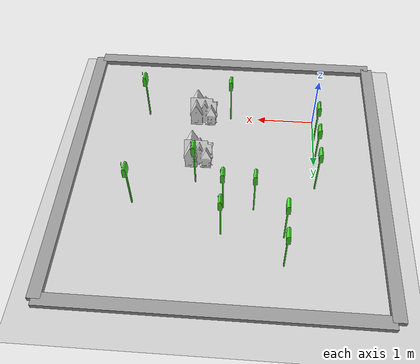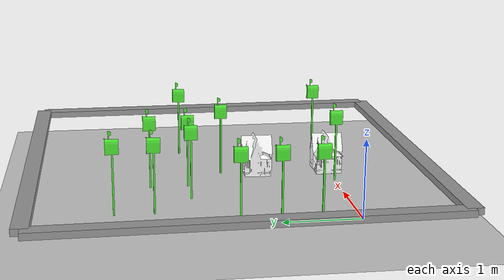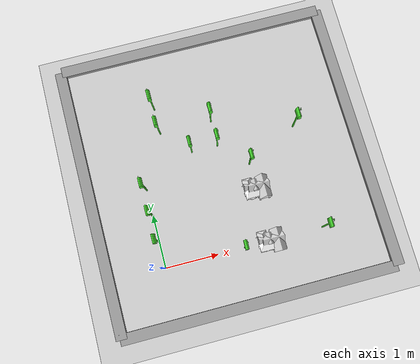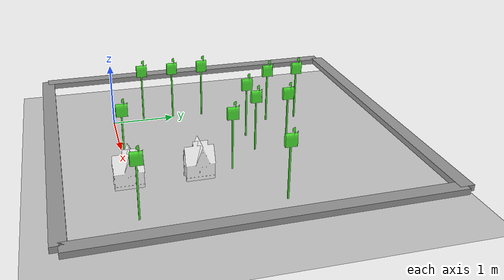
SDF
<sdf version="1.6">
 <world name="default">
  <light name="sun" type="directional">
   <pose>0 0 10 0 -0 0</pose>
   <diffuse>0.8 0.8 0.8 1</diffuse>
   <specular>0.1 0.1 0.1 1</specular>
   <attenuation>
    <range>1000</range>
    <constant>0.9</constant>
    <linear>0.01</linear>
    <quadratic>0.001</quadratic>
   </attenuation>
   <direction>-0.5 0.5 -1</direction>
  </light>
  <model name="ground_plane">
   <static>1</static>
   <link name="link">
    <collision name="collision">
     <geometry><plane><normal>0 0 1</normal><size>100 100</size></plane></geometry>
     <surface><friction><ode><mu>100</mu><mu2>50</mu2></ode></friction></surface>
    </collision>
    <visual name="visual">
     <cast_shadows>0</cast_shadows>
     <geometry><plane><normal>0 0 1</normal><size>100 100</size></plane></geometry>
     <material>
      <script><uri>file://media/materials/scripts/gazebo.material</uri><name>Gazebo/Grey</name></script>
     </material>
    </visual>
   </link>
  </model>
  <gravity>0 0 -9.8</gravity>
  <magnetic_field>6e-06 2.3e-05 -4.2e-05</magnetic_field>
  <atmosphere type="adiabatic"/>
  <physics name="default_physics" default="0" type="ode">
   <max_step_size>0.001</max_step_size>
   <real_time_factor>1</real_time_factor>
   <real_time_update_rate>1000</real_time_update_rate>
  </physics>
  <scene><ambient>0.4 0.4 0.4 1</ambient><background>0.7 0.7 0.7 1</background><shadows>1</shadows></scene>
  <spherical_coordinates>
   <surface_model>EARTH_WGS84</surface_model>
   <latitude_deg>0</latitude_deg>
   <longitude_deg>0</longitude_deg>
   <elevation>0</elevation>
   <heading_deg>0</heading_deg>
  </spherical_coordinates>
  <model name="wall1">
   <static>1</static>
   <link name="link">
    <pose>0 0 0.42 0 -0 0</pose>
    <collision name="collision"><geometry><box><size>5 0.2 0.084</size></box></geometry></collision>
    <visual name="visual">
     <cast_shadows>0</cast_shadows>
     <geometry><box><size>5 0.2 0.084</size></box></geometry>
     <material>
      <script>
       <uri>model://grey_wall/materials/scripts</uri>
       <uri>model://grey_wall/materials/textures</uri>
       <name>vrc/grey_wall</name>
      </script>
     </material>
    </visual>
   </link>
   <pose>-1 1.5 0 0 -0 -1.55905</pose>
  </model>
  <model name="wall2">
   <static>1</static>
   <link name="link">
    <pose>0 0 0.42 0 -0 0</pose>
    <collision name="collision"><geometry><box><size>5 0.2 0.084</size></box></geometry></collision>
    <visual name="visual">
     <cast_shadows>0</cast_shadows>
     <geometry><box><size>5 0.2 0.084</size></box></geometry>
     <material>
      <script>
       <uri>model://grey_wall/materials/scripts</uri>
       <uri>model://grey_wall/materials/textures</uri>
       <name>vrc/grey_wall</name>
      </script>
     </material>
    </visual>
   </link>
   <pose>1.5 4.0 0 0 -0 0</pose>
  </model>
  <model name="wall3">
   <static>1</static>
   <link name="link">
    <pose>0 0 0.42 0 -0 0</pose>
    <collision name="collision"><geometry><box><size>5 0.2 0.084</size></box></geometry></collision>
    <visual name="visual">
     <cast_shadows>0</cast_shadows>
     <geometry><box><size>5 0.2 0.084</size></box></geometry>
     <material>
      <script>
       <uri>model://grey_wall/materials/scripts</uri>
       <uri>model://grey_wall/materials/textures</uri>
       <name>vrc/grey_wall</name>
      </script>
     </material>
    </visual>
   </link>
   <pose>4.0 1.5 0 0 -0 -1.55905</pose>
  </model>
  <model name="wall4">
   <static>1</static>
   <link name="link">
    <pose>0 0 0.42 0 -0 0</pose>
    <collision name="collision"><geometry><box><size>5 0.2 0.084</size></box></geometry></collision>
    <visual name="visual">
     <cast_shadows>0</cast_shadows>
     <geometry><box><size>5 0.2 0.084</size></box></geometry>
     <material>
      <script>
       <uri>model://grey_wall/materials/scripts</uri>
       <uri>model://grey_wall/materials/textures</uri>
       <name>vrc/grey_wall</name>
      </script>
     </material>
    </visual>
   </link>
   <pose>1.5 -1 0 0 -0 0</pose>
  </model>
  <model name="Mailbox_1">
   <link name="link">
    <inertial>
     <mass>1</mass>
     <inertia><ixx>1</ixx><ixy>0</ixy><ixz>0</ixz><iyy>1</iyy><iyz>0</iyz><izz>1</izz></inertia>
    </inertial>
    <visual name="visual">
     <geometry><mesh><uri>model://mailbox/meshes/mailbox.dae</uri><scale>0.5 0.5 1</scale></mesh></geometry>
     <material>
      <ambient>0.3 0.9 0.2 0</ambient>
      <diffuse>0.3 0.9 0.2 0</diffuse>
      <specular>0 0 0 1</specular>
      <emissive>0 0 0 1</emissive>
      <script><name>ModelPreview_1::link::visual_MATERIAL_</name><uri>__default__</uri></script>
      <shader type="vertex"><normal_map>__default__</normal_map></shader>
     </material>
    </visual>
    <collision name="collision_0">
     <geometry><mesh><uri>model://mailbox/meshes/mailbox.dae</uri><scale>0.5 0.5 1</scale></mesh></geometry>
     <surface>
      <friction>
       <ode><mu>1</mu><mu2>1</mu2><fdir1>0 0 0</fdir1><slip1>0</slip1><slip2>0</slip2></ode>
       <torsional>
        <coefficient>1</coefficient>
        <patch_radius>0</patch_radius>
        <surface_radius>0</surface_radius>
        <use_patch_radius>1</use_patch_radius>
        <ode><slip>0</slip></ode>
       </torsional>
      </friction>
      <bounce><restitution_coefficient>0</restitution_coefficient><threshold>1e+06</threshold></bounce>
      <contact>
       <collide_without_contact>0</collide_without_contact>
       <collide_without_contact_bitmask>1</collide_without_contact_bitmask>
       <collide_bitmask>0</collide_bitmask>
       <ode>
        <soft_cfm>0</soft_cfm>
        <soft_erp>0.2</soft_erp>
        <kp>1e+13</kp>
        <kd>1</kd>
        <max_vel>0.01</max_vel>
        <min_depth>0</min_depth>
       </ode>
       <bullet>
        <split_impulse>1</split_impulse>
        <split_impulse_penetration_threshold>-0.01</split_impulse_penetration_threshold>
        <soft_cfm>0</soft_cfm>
        <soft_erp>0.2</soft_erp>
        <kp>1e+13</kp>
        <kd>1</kd>
       </bullet>
      </contact>
     </surface>
    </collision>
   </link>
   <static>1</static>
   <pose>2.0 1.5 0 0 -0 0</pose>
  </model>
  <model name="Mailbox_2">
   <link name="link">
    <inertial>
     <mass>1</mass>
     <inertia><ixx>1</ixx><ixy>0</ixy><ixz>0</ixz><iyy>1</iyy><iyz>0</iyz><izz>1</izz></inertia>
    </inertial>
    <visual name="visual">
     <geometry><mesh><uri>model://mailbox/meshes/mailbox.dae</uri><scale>0.5 0.5 1</scale></mesh></geometry>
     <material>
      <ambient>0.3 0.9 0.2 0</ambient>
      <diffuse>0.3 0.9 0.2 0</diffuse>
      <specular>0 0 0 1</specular>
      <emissive>0 0 0 1</emissive>
      <script><name>ModelPreview_1::link::visual_MATERIAL_</name><uri>__default__</uri></script>
      <shader type="vertex"><normal_map>__default__</normal_map></shader>
     </material>
    </visual>
    <collision name="collision_0">
     <geometry><mesh><uri>model://mailbox/meshes/mailbox.dae</uri><scale>0.5 0.5 1</scale></mesh></geometry>
     <surface>
      <friction>
       <ode><mu>1</mu><mu2>1</mu2><fdir1>0 0 0</fdir1><slip1>0</slip1><slip2>0</slip2></ode>
       <torsional>
        <coefficient>1</coefficient>
        <patch_radius>0</patch_radius>
        <surface_radius>0</surface_radius>
        <use_patch_radius>1</use_patch_radius>
        <ode><slip>0</slip></ode>
       </torsional>
      </friction>
      <bounce><restitution_coefficient>0</restitution_coefficient><threshold>1e+06</threshold></bounce>
      <contact>
       <collide_without_contact>0</collide_without_contact>
       <collide_without_contact_bitmask>1</collide_without_contact_bitmask>
       <collide_bitmask>0</collide_bitmask>
       <ode>
        <soft_cfm>0</soft_cfm>
        <soft_erp>0.2</soft_erp>
        <kp>1e+13</kp>
        <kd>1</kd>
        <max_vel>0.01</max_vel>
        <min_depth>0</min_depth>
       </ode>
       <bullet>
        <split_impulse>1</split_impulse>
        <split_impulse_penetration_threshold>-0.01</split_impulse_penetration_threshold>
        <soft_cfm>0</soft_cfm>
        <soft_erp>0.2</soft_erp>
        <kp>1e+13</kp>
        <kd>1</kd>
       </bullet>
      </contact>
     </surface>
    </collision>
   </link>
   <static>1</static>
   <pose>0.0 1.0 0 0 -0 0</pose>
  </model>
  <model name="Mailbox_3">
   <link name="link">
    <inertial>
     <mass>1</mass>
     <inertia><ixx>1</ixx><ixy>0</ixy><ixz>0</ixz><iyy>1</iyy><iyz>0</iyz><izz>1</izz></inertia>
    </inertial>
    <visual name="visual">
     <geometry><mesh><uri>model://mailbox/meshes/mailbox.dae</uri><scale>0.5 0.5 1</scale></mesh></geometry>
     <material>
      <ambient>0.3 0.9 0.2 0</ambient>
      <diffuse>0.3 0.9 0.2 0</diffuse>
      <specular>0 0 0 1</specular>
      <emissive>0 0 0 1</emissive>
      <script><name>ModelPreview_1::link::visual_MATERIAL_</name><uri>__default__</uri></script>
      <shader type="vertex"><normal_map>__default__</normal_map></shader>
     </material>
    </visual>
    <collision name="collision_0">
     <geometry><mesh><uri>model://mailbox/meshes/mailbox.dae</uri><scale>0.5 0.5 1</scale></mesh></geometry>
     <surface>
      <friction>
       <ode><mu>1</mu><mu2>1</mu2><fdir1>0 0 0</fdir1><slip1>0</slip1><slip2>0</slip2></ode>
       <torsional>
        <coefficient>1</coefficient>
        <patch_radius>0</patch_radius>
        <surface_radius>0</surface_radius>
        <use_patch_radius>1</use_patch_radius>
        <ode><slip>0</slip></ode>
       </torsional>
      </friction>
      <bounce><restitution_coefficient>0</restitution_coefficient><threshold>1e+06</threshold></bounce>
      <contact>
       <collide_without_contact>0</collide_without_contact>
       <collide_without_contact_bitmask>1</collide_without_contact_bitmask>
       <collide_bitmask>0</collide_bitmask>
       <ode>
        <soft_cfm>0</soft_cfm>
        <soft_erp>0.2</soft_erp>
        <kp>1e+13</kp>
        <kd>1</kd>
        <max_vel>0.01</max_vel>
        <min_depth>0</min_depth>
       </ode>
       <bullet>
        <split_impulse>1</split_impulse>
        <split_impulse_penetration_threshold>-0.01</split_impulse_penetration_threshold>
        <soft_cfm>0</soft_cfm>
        <soft_erp>0.2</soft_erp>
        <kp>1e+13</kp>
        <kd>1</kd>
       </bullet>
      </contact>
     </surface>
    </collision>
   </link>
   <static>1</static>
   <pose>3.0 2.0 0 0 -0 0</pose>
  </model>
  <model name="Mailbox_4">
   <link name="link">
    <inertial>
     <mass>1</mass>
     <inertia><ixx>1</ixx><ixy>0</ixy><ixz>0</ixz><iyy>1</iyy><iyz>0</iyz><izz>1</izz></inertia>
    </inertial>
    <visual name="visual">
     <geometry><mesh><uri>model://mailbox/meshes/mailbox.dae</uri><scale>0.5 0.5 1</scale></mesh></geometry>
     <material>
      <ambient>0.3 0.9 0.2 0</ambient>
      <diffuse>0.3 0.9 0.2 0</diffuse>
      <specular>0 0 0 1</specular>
      <emissive>0 0 0 1</emissive>
      <script><name>ModelPreview_1::link::visual_MATERIAL_</name><uri>__default__</uri></script>
      <shader type="vertex"><normal_map>__default__</normal_map></shader>
     </material>
    </visual>
    <collision name="collision_0">
     <geometry><mesh><uri>model://mailbox/meshes/mailbox.dae</uri><scale>0.5 0.5 1</scale></mesh></geometry>
     <surface>
      <friction>
       <ode><mu>1</mu><mu2>1</mu2><fdir1>0 0 0</fdir1><slip1>0</slip1><slip2>0</slip2></ode>
       <torsional>
        <coefficient>1</coefficient>
        <patch_radius>0</patch_radius>
        <surface_radius>0</surface_radius>
        <use_patch_radius>1</use_patch_radius>
        <ode><slip>0</slip></ode>
       </torsional>
      </friction>
      <bounce><restitution_coefficient>0</restitution_coefficient><threshold>1e+06</threshold></bounce>
      <contact>
       <collide_without_contact>0</collide_without_contact>
       <collide_without_contact_bitmask>1</collide_without_contact_bitmask>
       <collide_bitmask>0</collide_bitmask>
       <ode>
        <soft_cfm>0</soft_cfm>
        <soft_erp>0.2</soft_erp>
        <kp>1e+13</kp>
        <kd>1</kd>
        <max_vel>0.01</max_vel>
        <min_depth>0</min_depth>
       </ode>
       <bullet>
        <split_impulse>1</split_impulse>
        <split_impulse_penetration_threshold>-0.01</split_impulse_penetration_threshold>
        <soft_cfm>0</soft_cfm>
        <soft_erp>0.2</soft_erp>
        <kp>1e+13</kp>
        <kd>1</kd>
       </bullet>
      </contact>
     </surface>
    </collision>
   </link>
   <static>1</static>
   <pose>3.0 0.0 0 0 -0 0</pose>
  </model>
  <model name="Mailbox_5">
   <link name="link">
    <inertial>
     <mass>1</mass>
     <inertia><ixx>1</ixx><ixy>0</ixy><ixz>0</ixz><iyy>1</iyy><iyz>0</iyz><izz>1</izz></inertia>
    </inertial>
    <visual name="visual">
     <geometry><mesh><uri>model://mailbox/meshes/mailbox.dae</uri><scale>0.5 0.5 1</scale></mesh></geometry>
     <material>
      <ambient>0.3 0.9 0.2 0</ambient>
      <diffuse>0.3 0.9 0.2 0</diffuse>
      <specular>0 0 0 1</specular>
      <emissive>0 0 0 1</emissive>
      <script><name>ModelPreview_1::link::visual_MATERIAL_</name><uri>__default__</uri></script>
      <shader type="vertex"><normal_map>__default__</normal_map></shader>
     </material>
    </visual>
    <collision name="collision_0">
     <geometry><mesh><uri>model://mailbox/meshes/mailbox.dae</uri><scale>0.5 0.5 1</scale></mesh></geometry>
     <surface>
      <friction>
       <ode><mu>1</mu><mu2>1</mu2><fdir1>0 0 0</fdir1><slip1>0</slip1><slip2>0</slip2></ode>
       <torsional>
        <coefficient>1</coefficient>
        <patch_radius>0</patch_radius>
        <surface_radius>0</surface_radius>
        <use_patch_radius>1</use_patch_radius>
        <ode><slip>0</slip></ode>
       </torsional>
      </friction>
      <bounce><restitution_coefficient>0</restitution_coefficient><threshold>1e+06</threshold></bounce>
      <contact>
       <collide_without_contact>0</collide_without_contact>
       <collide_without_contact_bitmask>1</collide_without_contact_bitmask>
       <collide_bitmask>0</collide_bitmask>
       <ode>
        <soft_cfm>0</soft_cfm>
        <soft_erp>0.2</soft_erp>
        <kp>1e+13</kp>
        <kd>1</kd>
        <max_vel>0.01</max_vel>
        <min_depth>0</min_depth>
       </ode>
       <bullet>
        <split_impulse>1</split_impulse>
        <split_impulse_penetration_threshold>-0.01</split_impulse_penetration_threshold>
        <soft_cfm>0</soft_cfm>
        <soft_erp>0.2</soft_erp>
        <kp>1e+13</kp>
        <kd>1</kd>
       </bullet>
      </contact>
     </surface>
    </collision>
   </link>
   <static>1</static>
   <pose>0.0 0.5 0 0 -0 0</pose>
  </model>
  <model name="Mailbox_6">
   <link name="link">
    <inertial>
     <mass>1</mass>
     <inertia><ixx>1</ixx><ixy>0</ixy><ixz>0</ixz><iyy>1</iyy><iyz>0</iyz><izz>1</izz></inertia>
    </inertial>
    <visual name="visual">
     <geometry><mesh><uri>model://mailbox/meshes/mailbox.dae</uri><scale>0.5 0.5 1</scale></mesh></geometry>
     <material>
      <ambient>0.3 0.9 0.2 0</ambient>
      <diffuse>0.3 0.9 0.2 0</diffuse>
      <specular>0 0 0 1</specular>
      <emissive>0 0 0 1</emissive>
      <script><name>ModelPreview_1::link::visual_MATERIAL_</name><uri>__default__</uri></script>
      <shader type="vertex"><normal_map>__default__</normal_map></shader>
     </material>
    </visual>
    <collision name="collision_0">
     <geometry><mesh><uri>model://mailbox/meshes/mailbox.dae</uri><scale>0.5 0.5 1</scale></mesh></geometry>
     <surface>
      <friction>
       <ode><mu>1</mu><mu2>1</mu2><fdir1>0 0 0</fdir1><slip1>0</slip1><slip2>0</slip2></ode>
       <torsional>
        <coefficient>1</coefficient>
        <patch_radius>0</patch_radius>
        <surface_radius>0</surface_radius>
        <use_patch_radius>1</use_patch_radius>
        <ode><slip>0</slip></ode>
       </torsional>
      </friction>
      <bounce><restitution_coefficient>0</restitution_coefficient><threshold>1e+06</threshold></bounce>
      <contact>
       <collide_without_contact>0</collide_without_contact>
       <collide_without_contact_bitmask>1</collide_without_contact_bitmask>
       <collide_bitmask>0</collide_bitmask>
       <ode>
        <soft_cfm>0</soft_cfm>
        <soft_erp>0.2</soft_erp>
        <kp>1e+13</kp>
        <kd>1</kd>
        <max_vel>0.01</max_vel>
        <min_depth>0</min_depth>
       </ode>
       <bullet>
        <split_impulse>1</split_impulse>
        <split_impulse_penetration_threshold>-0.01</split_impulse_penetration_threshold>
        <soft_cfm>0</soft_cfm>
        <soft_erp>0.2</soft_erp>
        <kp>1e+13</kp>
        <kd>1</kd>
       </bullet>
      </contact>
     </surface>
    </collision>
   </link>
   <static>1</static>
   <pose>1.0 2.0 0 0 -0 0</pose>
  </model>
  <model name="Mailbox_7">
   <link name="link">
    <inertial>
     <mass>1</mass>
     <inertia><ixx>1</ixx><ixy>0</ixy><ixz>0</ixz><iyy>1</iyy><iyz>0</iyz><izz>1</izz></inertia>
    </inertial>
    <visual name="visual">
     <geometry><mesh><uri>model://mailbox/meshes/mailbox.dae</uri><scale>0.5 0.5 1</scale></mesh></geometry>
     <material>
      <ambient>0.3 0.9 0.2 0</ambient>
      <diffuse>0.3 0.9 0.2 0</diffuse>
      <specular>0 0 0 1</specular>
      <emissive>0 0 0 1</emissive>
      <script><name>ModelPreview_1::link::visual_MATERIAL_</name><uri>__default__</uri></script>
      <shader type="vertex"><normal_map>__default__</normal_map></shader>
     </material>
    </visual>
    <collision name="collision_0">
     <geometry><mesh><uri>model://mailbox/meshes/mailbox.dae</uri><scale>0.5 0.5 1</scale></mesh></geometry>
     <surface>
      <friction>
       <ode><mu>1</mu><mu2>1</mu2><fdir1>0 0 0</fdir1><slip1>0</slip1><slip2>0</slip2></ode>
       <torsional>
        <coefficient>1</coefficient>
        <patch_radius>0</patch_radius>
        <surface_radius>0</surface_radius>
        <use_patch_radius>1</use_patch_radius>
        <ode><slip>0</slip></ode>
       </torsional>
      </friction>
      <bounce><restitution_coefficient>0</restitution_coefficient><threshold>1e+06</threshold></bounce>
      <contact>
       <collide_without_contact>0</collide_without_contact>
       <collide_without_contact_bitmask>1</collide_without_contact_bitmask>
       <collide_bitmask>0</collide_bitmask>
       <ode>
        <soft_cfm>0</soft_cfm>
        <soft_erp>0.2</soft_erp>
        <kp>1e+13</kp>
        <kd>1</kd>
        <max_vel>0.01</max_vel>
        <min_depth>0</min_depth>
       </ode>
       <bullet>
        <split_impulse>1</split_impulse>
        <split_impulse_penetration_threshold>-0.01</split_impulse_penetration_threshold>
        <soft_cfm>0</soft_cfm>
        <soft_erp>0.2</soft_erp>
        <kp>1e+13</kp>
        <kd>1</kd>
       </bullet>
      </contact>
     </surface>
    </collision>
   </link>
   <static>1</static>
   <pose>0.5 3.0 0 0 -0 0</pose>
  </model>
  <model name="Mailbox_8">
   <link name="link">
    <inertial>
     <mass>1</mass>
     <inertia><ixx>1</ixx><ixy>0</ixy><ixz>0</ixz><iyy>1</iyy><iyz>0</iyz><izz>1</izz></inertia>
    </inertial>
    <visual name="visual">
     <geometry><mesh><uri>model://mailbox/meshes/mailbox.dae</uri><scale>0.5 0.5 1</scale></mesh></geometry>
     <material>
      <ambient>0.3 0.9 0.2 0</ambient>
      <diffuse>0.3 0.9 0.2 0</diffuse>
      <specular>0 0 0 1</specular>
      <emissive>0 0 0 1</emissive>
      <script><name>ModelPreview_1::link::visual_MATERIAL_</name><uri>__default__</uri></script>
      <shader type="vertex"><normal_map>__default__</normal_map></shader>
     </material>
    </visual>
    <collision name="collision_0">
     <geometry><mesh><uri>model://mailbox/meshes/mailbox.dae</uri><scale>0.5 0.5 1</scale></mesh></geometry>
     <surface>
      <friction>
       <ode><mu>1</mu><mu2>1</mu2><fdir1>0 0 0</fdir1><slip1>0</slip1><slip2>0</slip2></ode>
       <torsional>
        <coefficient>1</coefficient>
        <patch_radius>0</patch_radius>
        <surface_radius>0</surface_radius>
        <use_patch_radius>1</use_patch_radius>
        <ode><slip>0</slip></ode>
       </torsional>
      </friction>
      <bounce><restitution_coefficient>0</restitution_coefficient><threshold>1e+06</threshold></bounce>
      <contact>
       <collide_without_contact>0</collide_without_contact>
       <collide_without_contact_bitmask>1</collide_without_contact_bitmask>
       <collide_bitmask>0</collide_bitmask>
       <ode>
        <soft_cfm>0</soft_cfm>
        <soft_erp>0.2</soft_erp>
        <kp>1e+13</kp>
        <kd>1</kd>
        <max_vel>0.01</max_vel>
        <min_depth>0</min_depth>
       </ode>
       <bullet>
        <split_impulse>1</split_impulse>
        <split_impulse_penetration_threshold>-0.01</split_impulse_penetration_threshold>
        <soft_cfm>0</soft_cfm>
        <soft_erp>0.2</soft_erp>
        <kp>1e+13</kp>
        <kd>1</kd>
       </bullet>
      </contact>
     </surface>
    </collision>
   </link>
   <static>1</static>
   <pose>0.5 2.5 0 0 -0 0</pose>
  </model>
  <model name="Mailbox_9">
   <link name="link">
    <inertial>
     <mass>1</mass>
     <inertia><ixx>1</ixx><ixy>0</ixy><ixz>0</ixz><iyy>1</iyy><iyz>0</iyz><izz>1</izz></inertia>
    </inertial>
    <visual name="visual">
     <geometry><mesh><uri>model://mailbox/meshes/mailbox.dae</uri><scale>0.5 0.5 1</scale></mesh></geometry>
     <material>
      <ambient>0.3 0.9 0.2 0</ambient>
      <diffuse>0.3 0.9 0.2 0</diffuse>
      <specular>0 0 0 1</specular>
      <emissive>0 0 0 1</emissive>
      <script><name>ModelPreview_1::link::visual_MATERIAL_</name><uri>__default__</uri></script>
      <shader type="vertex"><normal_map>__default__</normal_map></shader>
     </material>
    </visual>
    <collision name="collision_0">
     <geometry><mesh><uri>model://mailbox/meshes/mailbox.dae</uri><scale>0.5 0.5 1</scale></mesh></geometry>
     <surface>
      <friction>
       <ode><mu>1</mu><mu2>1</mu2><fdir1>0 0 0</fdir1><slip1>0</slip1><slip2>0</slip2></ode>
       <torsional>
        <coefficient>1</coefficient>
        <patch_radius>0</patch_radius>
        <surface_radius>0</surface_radius>
        <use_patch_radius>1</use_patch_radius>
        <ode><slip>0</slip></ode>
       </torsional>
      </friction>
      <bounce><restitution_coefficient>0</restitution_coefficient><threshold>1e+06</threshold></bounce>
      <contact>
       <collide_without_contact>0</collide_without_contact>
       <collide_without_contact_bitmask>1</collide_without_contact_bitmask>
       <collide_bitmask>0</collide_bitmask>
       <ode>
        <soft_cfm>0</soft_cfm>
        <soft_erp>0.2</soft_erp>
        <kp>1e+13</kp>
        <kd>1</kd>
        <max_vel>0.01</max_vel>
        <min_depth>0</min_depth>
       </ode>
       <bullet>
        <split_impulse>1</split_impulse>
        <split_impulse_penetration_threshold>-0.01</split_impulse_penetration_threshold>
        <soft_cfm>0</soft_cfm>
        <soft_erp>0.2</soft_erp>
        <kp>1e+13</kp>
        <kd>1</kd>
       </bullet>
      </contact>
     </surface>
    </collision>
   </link>
   <static>1</static>
   <pose>1.0 2.0 0 0 -0 0</pose>
  </model>
  <model name="Mailbox_10">
   <link name="link">
    <inertial>
     <mass>1</mass>
     <inertia><ixx>1</ixx><ixy>0</ixy><ixz>0</ixz><iyy>1</iyy><iyz>0</iyz><izz>1</izz></inertia>
    </inertial>
    <visual name="visual">
     <geometry><mesh><uri>model://mailbox/meshes/mailbox.dae</uri><scale>0.5 0.5 1</scale></mesh></geometry>
     <material>
      <ambient>0.3 0.9 0.2 0</ambient>
      <diffuse>0.3 0.9 0.2 0</diffuse>
      <specular>0 0 0 1</specular>
      <emissive>0 0 0 1</emissive>
      <script><name>ModelPreview_1::link::visual_MATERIAL_</name><uri>__default__</uri></script>
      <shader type="vertex"><normal_map>__default__</normal_map></shader>
     </material>
    </visual>
    <collision name="collision_0">
     <geometry><mesh><uri>model://mailbox/meshes/mailbox.dae</uri><scale>0.5 0.5 1</scale></mesh></geometry>
     <surface>
      <friction>
       <ode><mu>1</mu><mu2>1</mu2><fdir1>0 0 0</fdir1><slip1>0</slip1><slip2>0</slip2></ode>
       <torsional>
        <coefficient>1</coefficient>
        <patch_radius>0</patch_radius>
        <surface_radius>0</surface_radius>
        <use_patch_radius>1</use_patch_radius>
        <ode><slip>0</slip></ode>
       </torsional>
      </friction>
      <bounce><restitution_coefficient>0</restitution_coefficient><threshold>1e+06</threshold></bounce>
      <contact>
       <collide_without_contact>0</collide_without_contact>
       <collide_without_contact_bitmask>1</collide_without_contact_bitmask>
       <collide_bitmask>0</collide_bitmask>
       <ode>
        <soft_cfm>0</soft_cfm>
        <soft_erp>0.2</soft_erp>
        <kp>1e+13</kp>
        <kd>1</kd>
        <max_vel>0.01</max_vel>
        <min_depth>0</min_depth>
       </ode>
       <bullet>
        <split_impulse>1</split_impulse>
        <split_impulse_penetration_threshold>-0.01</split_impulse_penetration_threshold>
        <soft_cfm>0</soft_cfm>
        <soft_erp>0.2</soft_erp>
        <kp>1e+13</kp>
        <kd>1</kd>
       </bullet>
      </contact>
     </surface>
    </collision>
   </link>
   <static>1</static>
   <pose>1.5 0.0 0 0 -0 0</pose>
  </model>
  <model name="Mailbox_11">
   <link name="link">
    <inertial>
     <mass>1</mass>
     <inertia><ixx>1</ixx><ixy>0</ixy><ixz>0</ixz><iyy>1</iyy><iyz>0</iyz><izz>1</izz></inertia>
    </inertial>
    <visual name="visual">
     <geometry><mesh><uri>model://mailbox/meshes/mailbox.dae</uri><scale>0.5 0.5 1</scale></mesh></geometry>
     <material>
      <ambient>0.3 0.9 0.2 0</ambient>
      <diffuse>0.3 0.9 0.2 0</diffuse>
      <specular>0 0 0 1</specular>
      <emissive>0 0 0 1</emissive>
      <script><name>ModelPreview_1::link::visual_MATERIAL_</name><uri>__default__</uri></script>
      <shader type="vertex"><normal_map>__default__</normal_map></shader>
     </material>
    </visual>
    <collision name="collision_0">
     <geometry><mesh><uri>model://mailbox/meshes/mailbox.dae</uri><scale>0.5 0.5 1</scale></mesh></geometry>
     <surface>
      <friction>
       <ode><mu>1</mu><mu2>1</mu2><fdir1>0 0 0</fdir1><slip1>0</slip1><slip2>0</slip2></ode>
       <torsional>
        <coefficient>1</coefficient>
        <patch_radius>0</patch_radius>
        <surface_radius>0</surface_radius>
        <use_patch_radius>1</use_patch_radius>
        <ode><slip>0</slip></ode>
       </torsional>
      </friction>
      <bounce><restitution_coefficient>0</restitution_coefficient><threshold>1e+06</threshold></bounce>
      <contact>
       <collide_without_contact>0</collide_without_contact>
       <collide_without_contact_bitmask>1</collide_without_contact_bitmask>
       <collide_bitmask>0</collide_bitmask>
       <ode>
        <soft_cfm>0</soft_cfm>
        <soft_erp>0.2</soft_erp>
        <kp>1e+13</kp>
        <kd>1</kd>
        <max_vel>0.01</max_vel>
        <min_depth>0</min_depth>
       </ode>
       <bullet>
        <split_impulse>1</split_impulse>
        <split_impulse_penetration_threshold>-0.01</split_impulse_penetration_threshold>
        <soft_cfm>0</soft_cfm>
        <soft_erp>0.2</soft_erp>
        <kp>1e+13</kp>
        <kd>1</kd>
       </bullet>
      </contact>
     </surface>
    </collision>
   </link>
   <static>1</static>
   <pose>0.0 1.5 0 0 -0 0</pose>
  </model>
  <model name="Mailbox_12">
   <link name="link">
    <inertial>
     <mass>1</mass>
     <inertia><ixx>1</ixx><ixy>0</ixy><ixz>0</ixz><iyy>1</iyy><iyz>0</iyz><izz>1</izz></inertia>
    </inertial>
    <visual name="visual">
     <geometry><mesh><uri>model://mailbox/meshes/mailbox.dae</uri><scale>0.5 0.5 1</scale></mesh></geometry>
     <material>
      <ambient>0.3 0.9 0.2 0</ambient>
      <diffuse>0.3 0.9 0.2 0</diffuse>
      <specular>0 0 0 1</specular>
      <emissive>0 0 0 1</emissive>
      <script><name>ModelPreview_1::link::visual_MATERIAL_</name><uri>__default__</uri></script>
      <shader type="vertex"><normal_map>__default__</normal_map></shader>
     </material>
    </visual>
    <collision name="collision_0">
     <geometry><mesh><uri>model://mailbox/meshes/mailbox.dae</uri><scale>0.5 0.5 1</scale></mesh></geometry>
     <surface>
      <friction>
       <ode><mu>1</mu><mu2>1</mu2><fdir1>0 0 0</fdir1><slip1>0</slip1><slip2>0</slip2></ode>
       <torsional>
        <coefficient>1</coefficient>
        <patch_radius>0</patch_radius>
        <surface_radius>0</surface_radius>
        <use_patch_radius>1</use_patch_radius>
        <ode><slip>0</slip></ode>
       </torsional>
      </friction>
      <bounce><restitution_coefficient>0</restitution_coefficient><threshold>1e+06</threshold></bounce>
      <contact>
       <collide_without_contact>0</collide_without_contact>
       <collide_without_contact_bitmask>1</collide_without_contact_bitmask>
       <collide_bitmask>0</collide_bitmask>
       <ode>
        <soft_cfm>0</soft_cfm>
        <soft_erp>0.2</soft_erp>
        <kp>1e+13</kp>
        <kd>1</kd>
        <max_vel>0.01</max_vel>
        <min_depth>0</min_depth>
       </ode>
       <bullet>
        <split_impulse>1</split_impulse>
        <split_impulse_penetration_threshold>-0.01</split_impulse_penetration_threshold>
        <soft_cfm>0</soft_cfm>
        <soft_erp>0.2</soft_erp>
        <kp>1e+13</kp>
        <kd>1</kd>
       </bullet>
      </contact>
     </surface>
    </collision>
   </link>
   <static>1</static>
   <pose>1.5 2.0 0 0 -0 0</pose>
  </model>
  <model name="Mailbox_13">
   <link name="link">
    <inertial>
     <mass>1</mass>
     <inertia><ixx>1</ixx><ixy>0</ixy><ixz>0</ixz><iyy>1</iyy><iyz>0</iyz><izz>1</izz></inertia>
    </inertial>
    <visual name="visual">
     <geometry><mesh><uri>model://mailbox/meshes/mailbox.dae</uri><scale>0.5 0.5 1</scale></mesh></geometry>
     <material>
      <ambient>0.3 0.9 0.2 0</ambient>
      <diffuse>0.3 0.9 0.2 0</diffuse>
      <specular>0 0 0 1</specular>
      <emissive>0 0 0 1</emissive>
      <script><name>ModelPreview_1::link::visual_MATERIAL_</name><uri>__default__</uri></script>
      <shader type="vertex"><normal_map>__default__</normal_map></shader>
     </material>
    </visual>
    <collision name="collision_0">
     <geometry><mesh><uri>model://mailbox/meshes/mailbox.dae</uri><scale>0.5 0.5 1</scale></mesh></geometry>
     <surface>
      <friction>
       <ode><mu>1</mu><mu2>1</mu2><fdir1>0 0 0</fdir1><slip1>0</slip1><slip2>0</slip2></ode>
       <torsional>
        <coefficient>1</coefficient>
        <patch_radius>0</patch_radius>
        <surface_radius>0</surface_radius>
        <use_patch_radius>1</use_patch_radius>
        <ode><slip>0</slip></ode>
       </torsional>
      </friction>
      <bounce><restitution_coefficient>0</restitution_coefficient><threshold>1e+06</threshold></bounce>
      <contact>
       <collide_without_contact>0</collide_without_contact>
       <collide_without_contact_bitmask>1</collide_without_contact_bitmask>
       <collide_bitmask>0</collide_bitmask>
       <ode>
        <soft_cfm>0</soft_cfm>
        <soft_erp>0.2</soft_erp>
        <kp>1e+13</kp>
        <kd>1</kd>
        <max_vel>0.01</max_vel>
        <min_depth>0</min_depth>
       </ode>
       <bullet>
        <split_impulse>1</split_impulse>
        <split_impulse_penetration_threshold>-0.01</split_impulse_penetration_threshold>
        <soft_cfm>0</soft_cfm>
        <soft_erp>0.2</soft_erp>
        <kp>1e+13</kp>
        <kd>1</kd>
       </bullet>
      </contact>
     </surface>
    </collision>
   </link>
   <static>1</static>
   <pose>1.5 2.5 0 0 -0 0</pose>
  </model>
  <model name="Warehouse_1">
   <link name="link">
    <inertial>
     <mass>1</mass>
     <inertia><ixx>1</ixx><ixy>0</ixy><ixz>0</ixz><iyy>1</iyy><iyz>0</iyz><izz>1</izz></inertia>
    </inertial>
    <visual name="visual">
     <geometry><mesh><uri>model://house_1/meshes/house_1.dae</uri><scale>0.5 0.5 1</scale></mesh></geometry>
     <material>
      <specular>0 0 0 1</specular>
      <emissive>0 0 0 1</emissive>
      <script><name>House_1/Diffuse</name><uri>model://house_1/materials/textures</uri></script>
      <shader type="normal_map_tangent_space"><normal_map>House_1_Normal.png</normal_map></shader>
     </material>
    </visual>
    <collision name="collision_0">
     <geometry><mesh><uri>model://house_1/meshes/house_1.dae</uri><scale>0.5 0.5 1</scale></mesh></geometry>
     <surface>
      <friction>
       <ode><mu>1</mu><mu2>1</mu2><fdir1>0 0 0</fdir1><slip1>0</slip1><slip2>0</slip2></ode>
       <torsional>
        <coefficient>1</coefficient>
        <patch_radius>0</patch_radius>
        <surface_radius>0</surface_radius>
        <use_patch_radius>1</use_patch_radius>
        <ode><slip>0</slip></ode>
       </torsional>
      </friction>
      <bounce><restitution_coefficient>0</restitution_coefficient><threshold>1e+06</threshold></bounce>
      <contact>
       <collide_without_contact>0</collide_without_contact>
       <collide_without_contact_bitmask>1</collide_without_contact_bitmask>
       <collide_bitmask>0</collide_bitmask>
       <ode>
        <soft_cfm>0</soft_cfm>
        <soft_erp>0.2</soft_erp>
        <kp>1e+13</kp>
        <kd>1</kd>
        <max_vel>0.01</max_vel>
        <min_depth>0</min_depth>
       </ode>
       <bullet>
        <split_impulse>1</split_impulse>
        <split_impulse_penetration_threshold>-0.01</split_impulse_penetration_threshold>
        <soft_cfm>0</soft_cfm>
        <soft_erp>0.2</soft_erp>
        <kp>1e+13</kp>
        <kd>1</kd>
       </bullet>
      </contact>
     </surface>
    </collision>
   </link>
   <static>1</static>
   <pose>2.0 0.0 0 0 -0 0</pose>
  </model>
  <model name="Warehouse_2">
   <link name="link">
    <inertial>
     <mass>1</mass>
     <inertia><ixx>1</ixx><ixy>0</ixy><ixz>0</ixz><iyy>1</iyy><iyz>0</iyz><izz>1</izz></inertia>
    </inertial>
    <visual name="visual">
     <geometry><mesh><uri>model://house_1/meshes/house_1.dae</uri><scale>0.5 0.5 1</scale></mesh></geometry>
     <material>
      <specular>0 0 0 1</specular>
      <emissive>0 0 0 1</emissive>
      <script><name>House_1/Diffuse</name><uri>model://house_1/materials/textures</uri></script>
      <shader type="normal_map_tangent_space"><normal_map>House_1_Normal.png</normal_map></shader>
     </material>
    </visual>
    <collision name="collision_0">
     <geometry><mesh><uri>model://house_1/meshes/house_1.dae</uri><scale>0.5 0.5 1</scale></mesh></geometry>
     <surface>
      <friction>
       <ode><mu>1</mu><mu2>1</mu2><fdir1>0 0 0</fdir1><slip1>0</slip1><slip2>0</slip2></ode>
       <torsional>
        <coefficient>1</coefficient>
        <patch_radius>0</patch_radius>
        <surface_radius>0</surface_radius>
        <use_patch_radius>1</use_patch_radius>
        <ode><slip>0</slip></ode>
       </torsional>
      </friction>
      <bounce><restitution_coefficient>0</restitution_coefficient><threshold>1e+06</threshold></bounce>
      <contact>
       <collide_without_contact>0</collide_without_contact>
       <collide_without_contact_bitmask>1</collide_without_contact_bitmask>
       <collide_bitmask>0</collide_bitmask>
       <ode>
        <soft_cfm>0</soft_cfm>
        <soft_erp>0.2</soft_erp>
        <kp>1e+13</kp>
        <kd>1</kd>
        <max_vel>0.01</max_vel>
        <min_depth>0</min_depth>
       </ode>
       <bullet>
        <split_impulse>1</split_impulse>
        <split_impulse_penetration_threshold>-0.01</split_impulse_penetration_threshold>
        <soft_cfm>0</soft_cfm>
        <soft_erp>0.2</soft_erp>
        <kp>1e+13</kp>
        <kd>1</kd>
       </bullet>
      </contact>
     </surface>
    </collision>
   </link>
   <static>1</static>
   <pose>2.0 1.0 0 0 -0 0</pose>
  </model>
 </world>
</sdf>
